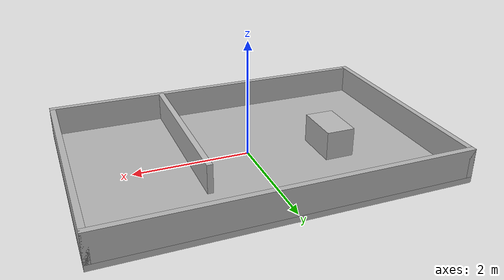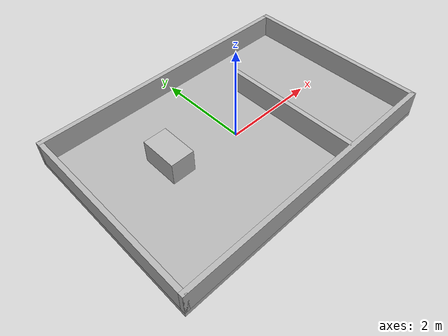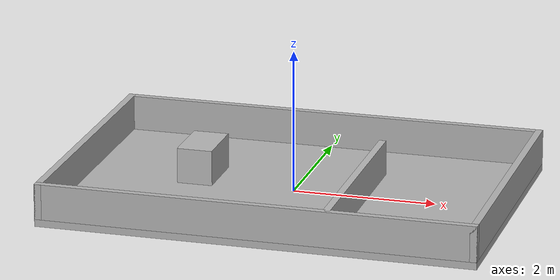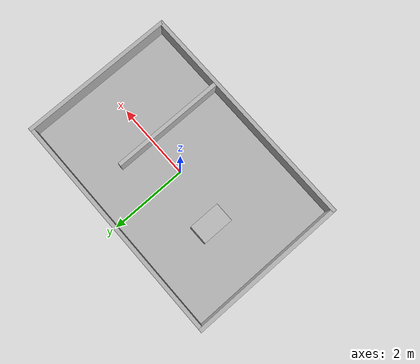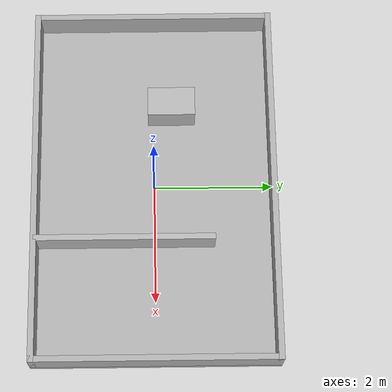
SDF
<?xml version='1.0' encoding='utf-8'?>
<sdf version="1.9">
  <world name="exploration_occluded">
    <physics name="physics" type="ignored">
      <max_step_size>0.001</max_step_size>
      <real_time_factor>1</real_time_factor>
    </physics>
    <gravity>0 0 -9.81</gravity>
    <plugin filename="gz-sim-physics-system" name="gz::sim::systems::Physics" />
    <plugin filename="gz-sim-user-commands-system" name="gz::sim::systems::UserCommands" />
    <plugin filename="gz-sim-scene-broadcaster-system" name="gz::sim::systems::SceneBroadcaster" />
    <plugin filename="gz-sim-sensors-system" name="gz::sim::systems::Sensors">
      <render_engine>ogre2</render_engine>
    </plugin>
    <light name="sun" type="directional">
      <pose>0 0 10 0 0 0</pose>
      <direction>-0.5 0.1 -0.9</direction>
      <diffuse>0.9 0.9 0.9 1</diffuse>
      <specular>0.2 0.2 0.2 1</specular>
      <cast_shadows>true</cast_shadows>
    </light>
    <model name="floor">
      <static>true</static>
      <pose>0 0 -0.05 0 0 0</pose>
      <link name="body">
        <collision name="collision">
          <geometry>
            <box>
              <size>6.1 4.1 0.1</size>
            </box>
          </geometry>
        </collision>
        <visual name="visual">
          <geometry>
            <box>
              <size>6.1 4.1 0.1</size>
            </box>
          </geometry>
          <material>
            <ambient>0.6 0.6 0.6 1</ambient>
            <diffuse>0.7 0.7 0.7 1</diffuse>
          </material>
        </visual>
      </link>
    </model>
    <model name="north">
      <static>true</static>
      <pose>0 2 0.25 0 0 0</pose>
      <link name="body">
        <collision name="collision">
          <geometry>
            <box>
              <size>6.1 0.1 0.5</size>
            </box>
          </geometry>
        </collision>
        <visual name="visual">
          <geometry>
            <box>
              <size>6.1 0.1 0.5</size>
            </box>
          </geometry>
          <material>
            <ambient>0.6 0.6 0.6 1</ambient>
            <diffuse>0.7 0.7 0.7 1</diffuse>
          </material>
        </visual>
      </link>
    </model>
    <model name="south">
      <static>true</static>
      <pose>0 -2 0.25 0 0 0</pose>
      <link name="body">
        <collision name="collision">
          <geometry>
            <box>
              <size>6.1 0.1 0.5</size>
            </box>
          </geometry>
        </collision>
        <visual name="visual">
          <geometry>
            <box>
              <size>6.1 0.1 0.5</size>
            </box>
          </geometry>
          <material>
            <ambient>0.6 0.6 0.6 1</ambient>
            <diffuse>0.7 0.7 0.7 1</diffuse>
          </material>
        </visual>
      </link>
    </model>
    <model name="east">
      <static>true</static>
      <pose>3 0 0.25 0 0 0</pose>
      <link name="body">
        <collision name="collision">
          <geometry>
            <box>
              <size>0.1 4.1 0.5</size>
            </box>
          </geometry>
        </collision>
        <visual name="visual">
          <geometry>
            <box>
              <size>0.1 4.1 0.5</size>
            </box>
          </geometry>
          <material>
            <ambient>0.6 0.6 0.6 1</ambient>
            <diffuse>0.7 0.7 0.7 1</diffuse>
          </material>
        </visual>
      </link>
    </model>
    <model name="west">
      <static>true</static>
      <pose>-3 0 0.25 0 0 0</pose>
      <link name="body">
        <collision name="collision">
          <geometry>
            <box>
              <size>0.1 4.1 0.5</size>
            </box>
          </geometry>
        </collision>
        <visual name="visual">
          <geometry>
            <box>
              <size>0.1 4.1 0.5</size>
            </box>
          </geometry>
          <material>
            <ambient>0.6 0.6 0.6 1</ambient>
            <diffuse>0.7 0.7 0.7 1</diffuse>
          </material>
        </visual>
      </link>
    </model>
    <model name="partition">
      <static>true</static>
      <pose>1 -0.5 0.25 0 0 0</pose>
      <link name="body">
        <collision name="collision">
          <geometry>
            <box>
              <size>0.1 3.0 0.5</size>
            </box>
          </geometry>
        </collision>
        <visual name="visual">
          <geometry>
            <box>
              <size>0.1 3.0 0.5</size>
            </box>
          </geometry>
        </visual>
      </link>
    </model>
    <model name="occluding_box">
      <static>true</static>
      <pose>-1.4 0.3 0.25 0 0 0</pose>
      <link name="body">
        <collision name="collision">
          <geometry>
            <box>
              <size>0.5 0.8 0.5</size>
            </box>
          </geometry>
        </collision>
        <visual name="visual">
          <geometry>
            <box>
              <size>0.5 0.8 0.5</size>
            </box>
          </geometry>
        </visual>
      </link>
    </model>
  </world>
</sdf>
